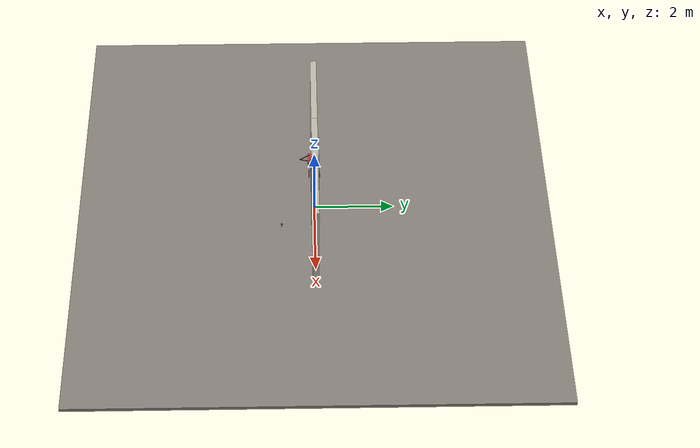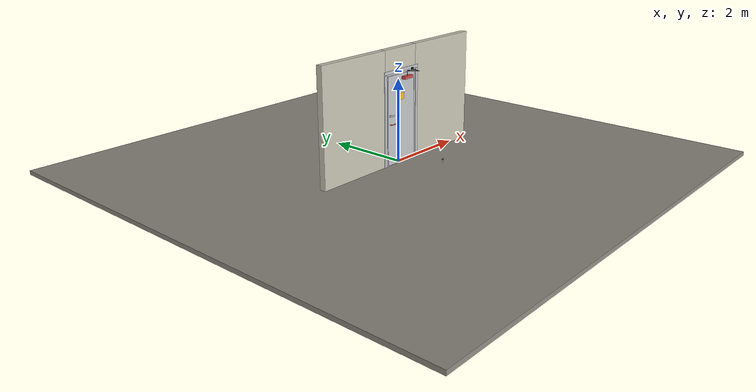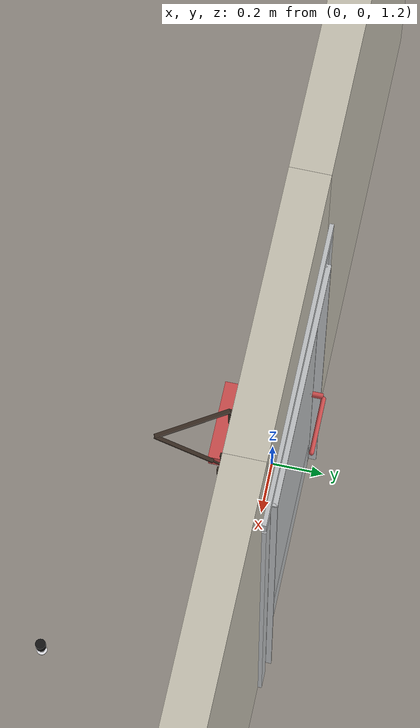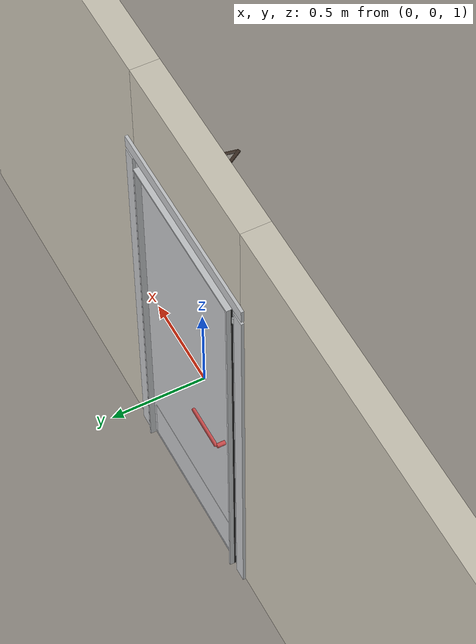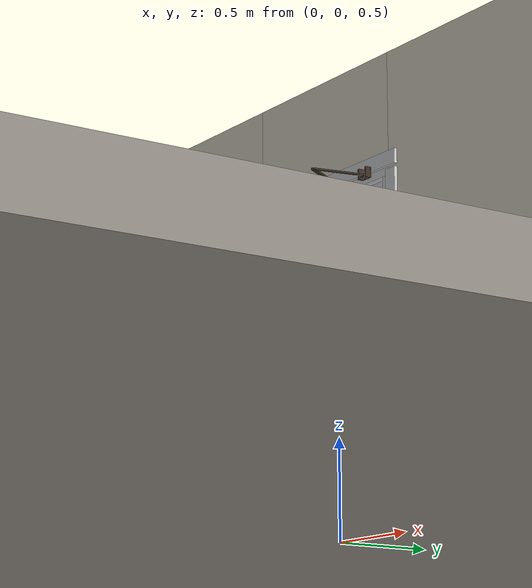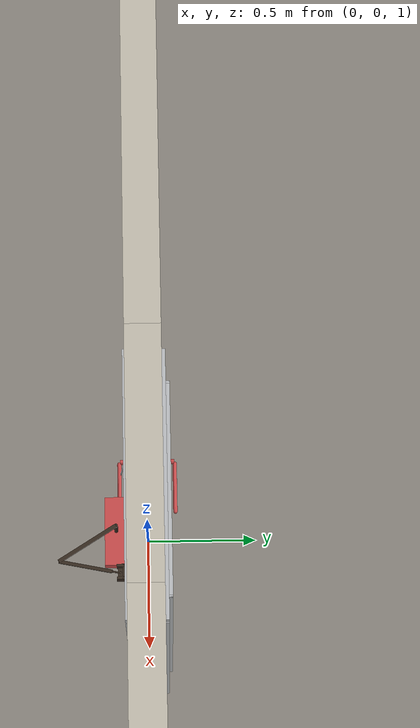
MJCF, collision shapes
<?xml version="1.0" ?>
<mujoco model="db0549_cold_storage_full">
  <compiler angle="radian" meshdir="../../hardware" texturedir="../../textures" autolimits="true" inertiafromgeom="false"/>
  <option timestep="0.002" integrator="implicitfast" cone="elliptic" impratio="10" noslip_iterations="3">
    <flag multiccd="enable"/>
  </option>
  <size memory="16M"/>
  <default>
    <geom condim="4" solref="0.005 1" solimp="0.95 0.99 0.001"/>
    <joint solreflimit="0.005 1" solimplimit="0.95 0.99 0.001"/>
    <tendon solreflimit="0.005 1"/>
    <equality solref="0.002 1"/>
  </default>
  <visual>
    <headlight ambient="0.4 0.4 0.4" diffuse="0.7 0.7 0.7" specular="0.2 0.2 0.2"/>
    <quality shadowsize="4096"/>
    <map znear="0.01" zfar="60"/>
  </visual>
  <asset>
    <mesh name="closer_body_fdc4667657" file="closer_body_fdc4667657.obj"/>
    <mesh name="hinge_05d9a38dfa" file="hinge_05d9a38dfa.obj"/>
    <mesh name="hinge_jamb_953fb56768" file="hinge_jamb_953fb56768.obj"/>
    <mesh name="lever_40740b93f7" file="lever_40740b93f7.obj"/>
    <material name="mat_floor" rgba="0.55 0.53 0.5 1" specular="0.2" shininess="0.15" reflectance="0"/>
    <material name="mat_wall" rgba="0.78 0.76 0.7 1" specular="0.2" shininess="0.1" reflectance="0"/>
    <material name="mat_hinge" rgba="0.55 0.56 0.58 1" specular="0.8" shininess="0.55" reflectance="0.4"/>
    <material name="mat_leaf" rgba="0.75 0.76 0.77 1" specular="0.8" shininess="0.65" reflectance="0.4"/>
    <material name="mat_op_chrome" rgba="0.9 0.9 0.92 1" specular="0.8" shininess="0.9" reflectance="0.4"/>
    <material name="mat_trim" rgba="0.85 0.66 0.3 1" specular="0.8" shininess="0.75" reflectance="0.4"/>
    <material name="mat_bolt" rgba="0.75 0.76 0.77 1" specular="0.8" shininess="0.65" reflectance="0.4"/>
    <material name="mat_op_steel_galvanized" rgba="0.65 0.66 0.68 1" specular="0.74" shininess="0.5" reflectance="0.36"/>
    <material name="mat_padlock" rgba="0.85 0.66 0.3 1" specular="0.8" shininess="0.75" reflectance="0.4"/>
    <material name="mat_frame" rgba="0.75 0.76 0.77 1" specular="0.8" shininess="0.65" reflectance="0.4"/>
    <material name="mat_seal" rgba="0.1 0.1 0.1 1" specular="0.2" shininess="0.1" reflectance="0"/>
    <material name="mat_threshold" rgba="0.8 0.81 0.83 1" specular="0.8" shininess="0.6" reflectance="0.4"/>
    <material name="mat_closer" rgba="0.22 0.17 0.13 1" specular="0.8" shininess="0.6" reflectance="0.4"/>
    <material name="mat_kick" rgba="0.75 0.76 0.77 1" specular="0.8" shininess="0.65" reflectance="0.4"/>
    <material name="mat_placard" rgba="0.95 0.75 0.05 1" specular="0.2" shininess="0.5" reflectance="0"/>
    <material name="mat_bumper_stop" rgba="0.08 0.08 0.08 1" specular="0.2" shininess="0.1" reflectance="0"/>
    <material name="mat_stop_base" rgba="0.9 0.9 0.92 1" specular="0.8" shininess="0.9" reflectance="0.4"/>
    <texture name="skybox" type="skybox" builtin="gradient" rgb1="0.6 0.7 0.85" rgb2="0.9 0.92 0.95" width="256" height="256"/>
  </asset>
  <worldbody>
    <light name="sun" pos="1.5 -2.5 4" dir="-0.3 0.5 -0.8" directional="true" diffuse="0.8 0.8 0.8" specular="0.3 0.3 0.3" castshadow="true"/>
    <light name="fill" pos="-1.5 2.5 3" dir="0.3 -0.5 -0.7" directional="true" diffuse="0.35 0.35 0.4" castshadow="false"/>
    <camera name="robot_view" pos="0 -2.640625 1.814375" xyaxes="1 0 0 0 0.26963 0.962964" fovy="52"/>
    <camera name="far_view" pos="0 2.640625 1.814375" xyaxes="-1 0 0 0 -0.26963 0.962964" fovy="52"/>
    <camera name="iso" pos="-2.006875 -2.218125 2.236875" xyaxes="0.741536 -0.670913 0 0.242917 0.268487 0.932151" fovy="46"/>
    <camera name="detail_handle" pos="-0.003 -0.93 1.28" xyaxes="0.97561 0.219512 0 -0.070934 0.315262 0.94635" fovy="38"/>
    <geom name="floor" type="box" size="6 6 0.05" pos="0 0 -0.05" material="mat_floor" group="0" contype="1" conaffinity="1" friction="0.8 0.005 0.0001" density="2400"/>
    <geom name="wall_left" type="box" size="0.98 0.075 1.375" pos="-1.52 0 1.375" material="mat_wall" group="0" contype="1" conaffinity="1" friction="0.6 0.005 0.0001" density="800"/>
    <geom name="wall_right" type="box" size="0.995 0.075 1.375" pos="1.505 0 1.375" material="mat_wall" group="0" contype="1" conaffinity="1" friction="0.6 0.005 0.0001" density="800"/>
    <geom name="wall_header" type="box" size="0.525 0.075 0.2625" pos="-0.015 0 2.4875" material="mat_wall" group="0" contype="1" conaffinity="1" friction="0.6 0.005 0.0001" density="800"/>
    <geom name="hinge_0_jamb" type="mesh" mesh="hinge_jamb_953fb56768" pos="0.462 -0.082 0.267" quat="0 0 1 0" material="mat_hinge" group="1" contype="0" conaffinity="0" density="7850"/>
    <geom name="hinge_1_jamb" type="mesh" mesh="hinge_jamb_953fb56768" pos="0.462 -0.082 1.9504" quat="0 0 1 0" material="mat_hinge" group="1" contype="0" conaffinity="0" density="7850"/>
    <geom name="leaf_staple_leg_n" type="box" size="0.003 0.0025 0.014" pos="-0.492 -0.089 1.2125" quat="0 0 -0.707107 0.707107" material="mat_op_steel_galvanized" group="0" contype="1" conaffinity="1" friction="0.6 0.005 0.0001" density="7800"/>
    <geom name="leaf_staple_leg_p" type="box" size="0.003 0.0025 0.014" pos="-0.492 -0.089 1.1875" quat="0 0 -0.707107 0.707107" material="mat_op_steel_galvanized" group="0" contype="1" conaffinity="1" friction="0.6 0.005 0.0001" density="7800"/>
    <geom name="leaf_staple_bridge" type="box" size="0.003 0.015 0.0025" pos="-0.492 -0.1005 1.2" quat="0 0 -0.707107 0.707107" material="mat_op_steel_galvanized" group="0" contype="1" conaffinity="1" friction="0.6 0.005 0.0001" density="7800"/>
    <geom name="leaf_staple_base" type="box" size="0.016 0.021 0.001" pos="-0.492 -0.076 1.2" quat="0 0 -0.707107 0.707107" material="mat_op_steel_galvanized" group="1" contype="0" conaffinity="0" density="7800"/>
    <geom name="jamb_hinge" type="box" size="0.0225 0.075 1.075" pos="0.4875 0 1.075" material="mat_frame" group="0" contype="1" conaffinity="1" friction="0.6 0.005 0.0001" density="300"/>
    <geom name="strike_2080_wall_n" type="box" size="0.0375 0.03375 0.019" pos="-0.5025 0.04125 2.0804" material="mat_frame" group="0" contype="1" conaffinity="1" friction="0.6 0.005 0.0001" density="300"/>
    <geom name="strike_2080_wall_p" type="box" size="0.0375 0.008 0.019" pos="-0.5025 -0.0155 2.0804" material="mat_frame" group="0" contype="1" conaffinity="1" friction="0.6 0.005 0.0001" density="300"/>
    <geom name="strike_2080_ramp" type="box" size="0.0375 0.035921 0.019" pos="-0.505822 -0.055596 2.0804" quat="0.99881 0 0 -0.048776" material="mat_frame" group="0" contype="1" conaffinity="1" friction="0.12 0.005 0.0001" density="300"/>
    <geom name="strike_2080_ramp_n" type="box" size="0.0375 0.035921 0.019" pos="-0.505822 0.043596 2.0804" quat="0.99881 0 0 0.048776" material="mat_frame" group="0" contype="1" conaffinity="1" friction="0.12 0.005 0.0001" density="300"/>
    <geom name="strike_2080_back" type="box" size="0.0325 0.0075 0.019" pos="-0.5075 0 2.0804" material="mat_frame" group="0" contype="1" conaffinity="1" friction="0.6 0.005 0.0001" density="300"/>
    <geom name="jamb_strike_0" type="box" size="0.0375 0.075 1.0307" pos="-0.5025 0 1.0307" material="mat_frame" group="0" contype="1" conaffinity="1" friction="0.6 0.005 0.0001" density="300"/>
    <geom name="jamb_strike_1" type="box" size="0.0375 0.075 0.0253" pos="-0.5025 0 2.1247" material="mat_frame" group="0" contype="1" conaffinity="1" friction="0.6 0.005 0.0001" density="300"/>
    <geom name="jamb_head" type="box" size="0.525 0.075 0.0225" pos="-0.015 0 2.1725" material="mat_frame" group="0" contype="1" conaffinity="1" friction="0.6 0.005 0.0001" density="300"/>
    <geom name="head_stud" type="box" size="0.525 0.075 0.015" pos="-0.015 0 2.21" material="mat_wall" group="0" contype="1" conaffinity="1" friction="0.6 0.005 0.0001" density="500"/>
    <geom name="stop_hinge" type="box" size="0.0055 0.016 1.075" pos="0.4595 0.0915 1.075" material="mat_frame" group="0" contype="1" conaffinity="1" friction="0.6 0.005 0.0001" density="300"/>
    <geom name="stop_strike" type="box" size="0.0055 0.016 1.075" pos="-0.4595 0.0915 1.075" material="mat_frame" group="0" contype="1" conaffinity="1" friction="0.6 0.005 0.0001" density="300"/>
    <geom name="stop_head" type="box" size="0.465 0.016 0.0055" pos="0 0.0915 2.1445" material="mat_frame" group="0" contype="1" conaffinity="1" friction="0.6 0.005 0.0001" density="300"/>
    <geom name="seal_hinge" type="box" size="0.004 0.005 1.075" pos="0.462 0.08 1.075" material="mat_seal" group="1" contype="0" conaffinity="0" density="1100"/>
    <geom name="seal_strike" type="box" size="0.004 0.005 1.075" pos="-0.462 0.08 1.075" material="mat_seal" group="1" contype="0" conaffinity="0" density="1100"/>
    <geom name="seal_head" type="box" size="0.445 0.005 0.008" pos="0 0.08 2.138" material="mat_seal" group="1" contype="0" conaffinity="0" density="1100"/>
    <geom name="casing_l_n" type="box" size="0.035 0.008 1.0975" pos="-0.54 -0.083 1.075" material="mat_frame" group="2" contype="0" conaffinity="0" density="300"/>
    <geom name="casing_r_n" type="box" size="0.035 0.008 1.0975" pos="0.54 -0.083 1.075" material="mat_frame" group="2" contype="0" conaffinity="0" density="300"/>
    <geom name="casing_h_n" type="box" size="0.575 0.008 0.035" pos="0 -0.083 2.225" material="mat_frame" group="2" contype="0" conaffinity="0" density="300"/>
    <geom name="casing_l_p" type="box" size="0.035 0.008 1.0975" pos="-0.54 0.083 1.075" material="mat_frame" group="2" contype="0" conaffinity="0" density="300"/>
    <geom name="casing_r_p" type="box" size="0.035 0.008 1.0975" pos="0.54 0.083 1.075" material="mat_frame" group="2" contype="0" conaffinity="0" density="300"/>
    <geom name="casing_h_p" type="box" size="0.575 0.008 0.035" pos="0 0.083 2.225" material="mat_frame" group="2" contype="0" conaffinity="0" density="300"/>
    <geom name="threshold" type="box" size="0.51 0.075 0.0065" pos="0 0 0.0065" material="mat_threshold" group="0" contype="1" conaffinity="1" friction="0.5 0.005 0.0001" density="2700"/>
    <geom name="closer_bracket" type="box" size="0.032 0.004 0.025667" pos="0.365 -0.095 2.187667" material="mat_closer" group="1" contype="0" conaffinity="0" density="2700"/>
    <geom name="closer_shoe_guide_-1" type="box" size="0.006 0.016 0.025667" pos="0.339 -0.107 2.187667" material="mat_closer" group="1" contype="0" conaffinity="0" density="2700"/>
    <geom name="closer_shoe_guide_+1" type="box" size="0.006 0.016 0.025667" pos="0.391 -0.107 2.187667" material="mat_closer" group="1" contype="0" conaffinity="0" density="2700"/>
    <geom name="door_stop_base" type="cylinder" size="0.022 0.003" pos="0.612074 -0.84097 0.003" material="mat_stop_base" group="0" contype="1" conaffinity="1" friction="0.6 0.005 0.0001" density="7850"/>
    <geom name="door_stop_post" type="cylinder" size="0.012 0.0255" pos="0.612074 -0.84097 0.0315" material="mat_stop_base" group="0" contype="1" conaffinity="1" friction="0.6 0.005 0.0001" density="7850"/>
    <geom name="door_stop_bumper" type="cylinder" size="0.022 0.02" pos="0.612074 -0.84097 0.077" material="mat_bumper_stop" group="0" contype="1" conaffinity="1" friction="0.6 0.005 0.0001" density="1100"/>
    <site name="approach_point" pos="0 -1.5 0" quat="1 0 0 0" size="0.05" rgba="0.2 0.9 0.2 0.5" group="4"/>
    <site name="goal_point" pos="0 1.5 0" quat="1 0 0 0" size="0.05" rgba="0.2 0.9 0.2 0.5" group="4"/>
    <site name="door_plane_center" pos="0 0 1.075" quat="1 0 0 0" size="0.02" rgba="0.2 0.9 0.2 0.5" group="4"/>
    <body name="leaf_riser" pos="0.465 0 0">
      <inertial pos="-0.003 -0.082 0.055" mass="0.174012" quat="0 0.707107 0 0.707107" diaginertia="0.000017053 0.00002732 0.00002732"/>
      <joint name="leaf_rise" type="slide" axis="0 0 1" limited="true" range="0 0.0264" damping="1" armature="0.5"/>
      <geom name="leaf_riser_marker" type="cylinder" size="0.014 0.018" pos="-0.003 -0.082 0.055" material="mat_hinge" group="1" contype="0" conaffinity="0" density="7850"/>
      <body name="leaf" pos="0 0 0">
        <inertial pos="-0.414352 -0.0252 1.240248" mass="57.388138" quat="0.515265 -0.513299 -0.461858 -0.507655" diaginertia="3.703515598 28.181561372 31.51073748"/>
        <joint name="leaf_hinge" type="hinge" axis="0 0 1" pos="-0.003 -0.082 0" limited="true" range="0 1.745329" solreflimit="0.02 1" damping="12.263793" frictionloss="4.346105" stiffness="16.997748" springref="-1.529614" armature="0.02"/>
        <geom name="leaf_slab" type="box" size="0.455 0.075 1.0567" pos="-0.458 0 1.0737" material="mat_leaf" group="0" contype="1" conaffinity="1" friction="0.35 0.005 0.0001" density="1"/>
        <geom name="hinge_0" type="mesh" mesh="hinge_05d9a38dfa" pos="-0.003 -0.082 0.267" quat="0 0 1 0" material="mat_hinge" group="1" contype="0" conaffinity="0" density="7850"/>
        <geom name="hinge_1" type="mesh" mesh="hinge_05d9a38dfa" pos="-0.003 -0.082 1.9504" quat="0 0 1 0" material="mat_hinge" group="1" contype="0" conaffinity="0" density="7850"/>
        <geom name="leaf_mag_catch_faceplate" type="box" size="0.0006 0.012 0.029" pos="-0.9124 0 2.0804" material="mat_bolt" group="1" contype="0" conaffinity="0" density="8500"/>
        <geom name="leaf_hasp_plate" type="box" size="0.024 0.0215 0.003" pos="-0.838 -0.078 1.2" quat="0 0 -0.707107 0.707107" material="mat_op_steel_galvanized" group="1" contype="0" conaffinity="0" density="7800"/>
        <geom name="closer_body" type="mesh" mesh="closer_body_fdc4667657" pos="-0.3 -0.075 2.0334" quat="0 0 -0.707107 0.707107" material="mat_closer" group="1" contype="0" conaffinity="0" density="2000"/>
        <geom name="closer_body_col" type="box" size="0.145 0.05 0.035" pos="-0.3 -0.125 2.0334" material="mat_closer" group="3" contype="1" conaffinity="1" rgba="0.8 0.3 0.3 0.25" friction="0.6 0.005 0.0001" density="2000"/>
        <geom name="closer_pinion_shaft" type="cylinder" size="0.008 0.0733" pos="-0.3 -0.126 2.1067" material="mat_closer" group="1" contype="0" conaffinity="0" density="2700"/>
        <geom name="kick_plate_p" type="box" size="0.425 0.0008 0.125" pos="-0.458 0.0758 0.152" material="mat_kick" group="2" contype="0" conaffinity="0" density="7900"/>
        <geom name="warning_placard" type="box" size="0.11 0.001 0.08" pos="-0.458 -0.076 1.60205" material="mat_placard" group="2" contype="0" conaffinity="0" density="1000"/>
        <site name="leaf_edge_mid" pos="-0.913 0 1.0567" quat="1 0 0 0" size="0.02" rgba="0.2 0.9 0.2 0.5" group="4"/>
        <body name="leaf_handle" pos="-0.848 0 1">
          <inertial pos="0.045692 0 0" mass="3.018013" quat="0 0.707107 0.707107 0" diaginertia="0.018502196 0.037998454 0.05452992"/>
          <joint name="leaf_handle_hinge" type="hinge" axis="0 1 0" limited="true" range="0 0.5" damping="0.58994" frictionloss="0.07" stiffness="2.5" springref="-0.96" armature="0.01"/>
          <geom name="leaf_handle_spindle" type="cylinder" size="0.006 0.075" pos="0 0 0" quat="0.707107 -0.707107 0 0" material="mat_op_chrome" group="1" contype="0" conaffinity="0" density="7850"/>
          <geom name="leaf_handle_lever_n" type="mesh" mesh="lever_40740b93f7" pos="0 -0.075 0" quat="0 0 -0.707107 0.707107" material="mat_op_chrome" group="1" contype="0" conaffinity="0" density="3000"/>
          <geom name="leaf_handle_lever_col_n" type="capsule" size="0.0095 0.1155" pos="0.125 -0.13 0" quat="0.707107 0 0.707107 0" material="mat_op_chrome" group="3" contype="1" conaffinity="1" rgba="0.8 0.3 0.3 0.25" friction="0.7 0.01 0.0001" density="3000"/>
          <geom name="leaf_handle_hub_col_n" type="cylinder" size="0.012 0.022" pos="0 -0.105 0" quat="0.707107 -0.707107 0 0" material="mat_op_chrome" group="3" contype="1" conaffinity="1" rgba="0.8 0.3 0.3 0.25" friction="0.6 0.005 0.0001" density="3000"/>
          <geom name="leaf_handle_lever_p" type="mesh" mesh="lever_40740b93f7" pos="0 0.075 0" quat="0 0 0.707107 0.707107" material="mat_op_chrome" group="1" contype="0" conaffinity="0" density="3000"/>
          <geom name="leaf_handle_lever_col_p" type="capsule" size="0.0095 0.1155" pos="0.125 0.13 0" quat="0.707107 0 0.707107 0" material="mat_op_chrome" group="3" contype="1" conaffinity="1" rgba="0.8 0.3 0.3 0.25" friction="0.7 0.01 0.0001" density="3000"/>
          <geom name="leaf_handle_hub_col_p" type="cylinder" size="0.012 0.022" pos="0 0.105 0" quat="0.707107 -0.707107 0 0" material="mat_op_chrome" group="3" contype="1" conaffinity="1" rgba="0.8 0.3 0.3 0.25" friction="0.6 0.005 0.0001" density="3000"/>
          <site name="leaf_handle_grip_n" pos="0.2 -0.13 0" quat="1 0 0 0" size="0.012" rgba="0.2 0.9 0.2 0.5" group="4"/>
          <site name="leaf_handle_grip_p" pos="0.2 0.13 0" quat="1 0 0 0" size="0.012" rgba="0.2 0.9 0.2 0.5" group="4"/>
        </body>
        <body name="leaf_mag_catch" pos="-0.913 0 2.0804">
          <inertial pos="0.012 0 0" mass="0.030762" quat="0 0 -0.707107 0.707107" diaginertia="0.000000526 0.000002949 0.000002949"/>
          <joint name="leaf_mag_catch_slide" type="slide" axis="1 0 0" limited="true" range="0 0.006" damping="2" frictionloss="0.3" stiffness="20000" springref="-0.006" armature="0.1"/>
          <geom name="leaf_mag_catch_capsule" type="capsule" size="0.006 0.012" pos="0.012 0 0" quat="0.707107 0 -0.707107 0" material="mat_bolt" group="0" contype="1" conaffinity="1" friction="0.2 0.005 0.0001" density="8500"/>
        </body>
        <body name="leaf_hasp" pos="-0.858 -0.081 1.2">
          <inertial pos="0.047504 -0.014824 0" mass="0.120573" quat="0.695935 0.695935 -0.125199 -0.125199" diaginertia="0.00001368 0.000185913 0.000199083"/>
          <joint name="leaf_hasp_hinge" type="hinge" axis="0 0 1" limited="true" range="0 2.9" damping="0.02" frictionloss="0.05" armature="0.005" ref="2.8"/>
          <geom name="leaf_hasp_strap" type="box" size="0.0605 0.0175 0.0015" pos="0.057507 -0.018853 0" quat="-0.696818 0.696818 -0.120185 0.120185" material="mat_op_steel_galvanized" group="0" contype="1" conaffinity="1" friction="0.6 0.005 0.0001" density="7800"/>
          <geom name="leaf_hasp_knuckle" type="cylinder" size="0.0045 0.0215" pos="0.00134 0.003769 0" quat="0.169967 0 0 0.98545" material="mat_op_steel_galvanized" group="1" contype="0" conaffinity="0" density="7850"/>
          <site name="leaf_hasp_grip" pos="0.098514 -0.024412 0" quat="0.169967 0 0 0.98545" size="0.01" rgba="0.2 0.9 0.2 0.5" group="4"/>
        </body>
        <body name="closer_arm_main" pos="-0.3 -0.126 2.18" quat="0.874163 0 0 -0.485633">
          <inertial pos="0.14 0 0" mass="0.12096" quat="1 0 0 0" diaginertia="0.000003588 0.00079128 0.000792852"/>
          <joint name="closer_pinion" type="hinge" axis="0 0 1" limited="false" damping="0.01" armature="0.002"/>
          <geom name="closer_arm_main_geom" type="box" size="0.14 0.008 0.005" pos="0.14 0 0" material="mat_closer" group="1" contype="0" conaffinity="0" density="2700"/>
          <body name="closer_arm_fore" pos="0.28 0 0" quat="0.37011 0 0 0.928988">
            <inertial pos="0.127353 0 0" mass="0.076107" quat="1 0 0 0" diaginertia="0.000001712 0.000430185 0.000430774"/>
            <joint name="closer_elbow" type="hinge" axis="0 0 1" limited="false" damping="0.01" armature="0.002"/>
            <geom name="closer_arm_fore_geom" type="box" size="0.1125 0.007 0.004" pos="0.1125 0 0" material="mat_closer" group="1" contype="0" conaffinity="0" density="2700"/>
            <geom name="closer_shoe_neck" type="box" size="0.0175 0.003 0.003" pos="0.2425 0 0" material="mat_closer" group="1" contype="0" conaffinity="0" density="2700"/>
            <geom name="closer_shoe_pivot" type="cylinder" size="0.005 0.011" pos="0.26 0 0" material="mat_closer" group="1" contype="0" conaffinity="0" density="2700"/>
          </body>
        </body>
      </body>
    </body>
    <body name="closer_shoe" pos="0.365 -0.109 2.18">
      <inertial pos="0 0 0" mass="0.033696" quat="1 0 0 0" diaginertia="0.000001842 0.00000499 0.000005394"/>
      <joint name="closer_shoe_slide" type="slide" axis="0 0 1" limited="true" range="0 0.015333" damping="0.1" armature="0.05"/>
      <geom name="closer_shoe_block" type="box" size="0.0195 0.01 0.008" pos="0 0 0" material="mat_closer" group="1" contype="0" conaffinity="0" density="2700"/>
    </body>
  </worldbody>
  <equality>
    <joint name="leaf_rise_couple" joint1="leaf_rise" joint2="leaf_hinge" polycoef="0 0.007639 0 0 0" active="true"/>
    <connect name="closer_arm_connect" body1="closer_arm_fore" body2="closer_shoe" anchor="0.26 0 0" active="true"/>
  </equality>
  <contact>
    <exclude body1="closer_arm_main" body2="leaf"/>
    <exclude body1="closer_arm_fore" body2="leaf"/>
    <exclude body1="closer_arm_main" body2="closer_arm_fore"/>
  </contact>
  <sensor>
    <jointpos name="leaf_hinge_pos" joint="leaf_hinge"/>
    <jointvel name="leaf_hinge_vel" joint="leaf_hinge"/>
    <jointpos name="leaf_handle_hinge_pos" joint="leaf_handle_hinge"/>
    <jointvel name="leaf_handle_hinge_vel" joint="leaf_handle_hinge"/>
    <jointpos name="leaf_mag_catch_slide_pos" joint="leaf_mag_catch_slide"/>
    <jointvel name="leaf_mag_catch_slide_vel" joint="leaf_mag_catch_slide"/>
    <jointpos name="leaf_hasp_hinge_pos" joint="leaf_hasp_hinge"/>
    <jointvel name="leaf_hasp_hinge_vel" joint="leaf_hasp_hinge"/>
  </sensor>
</mujoco>
